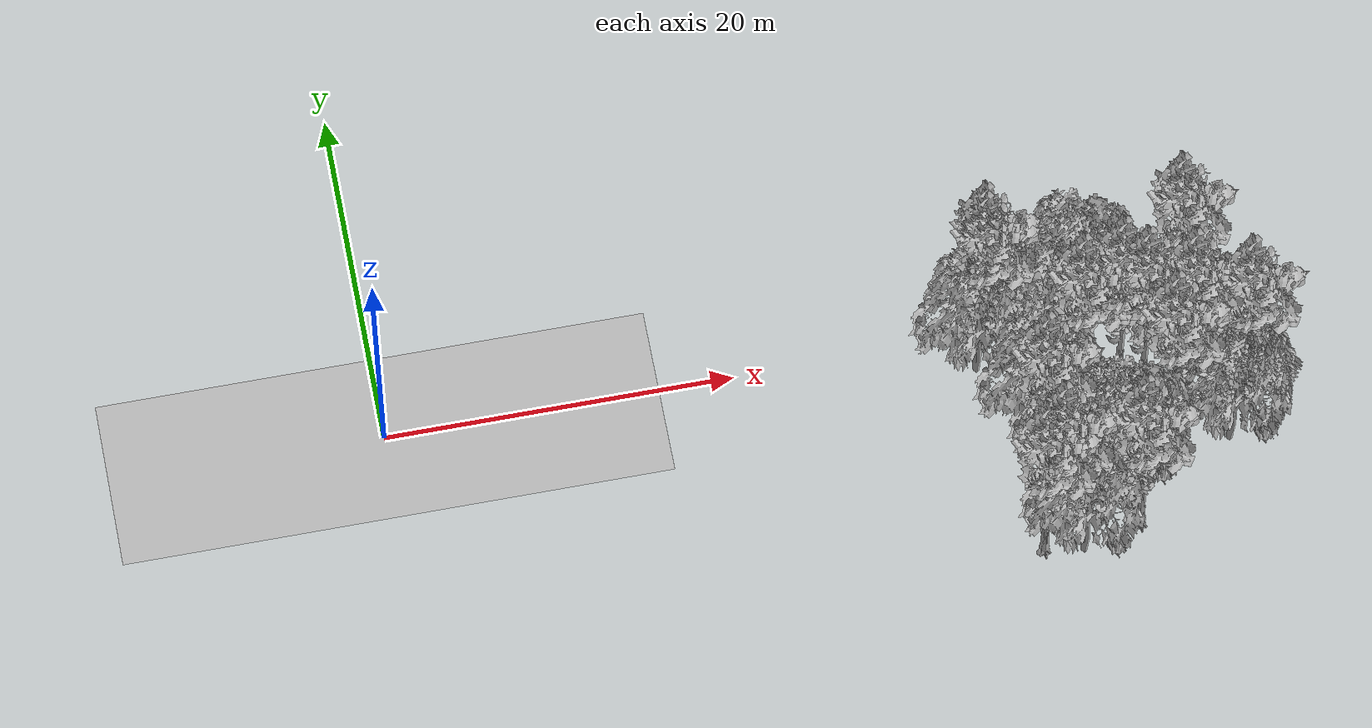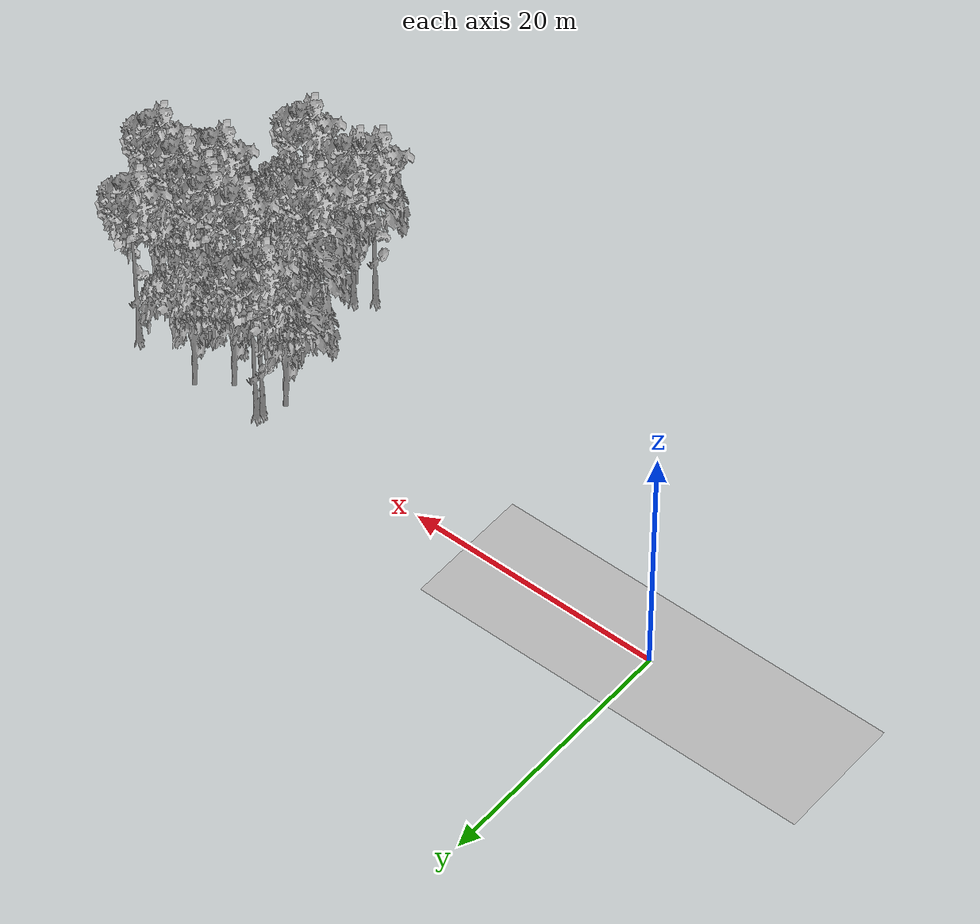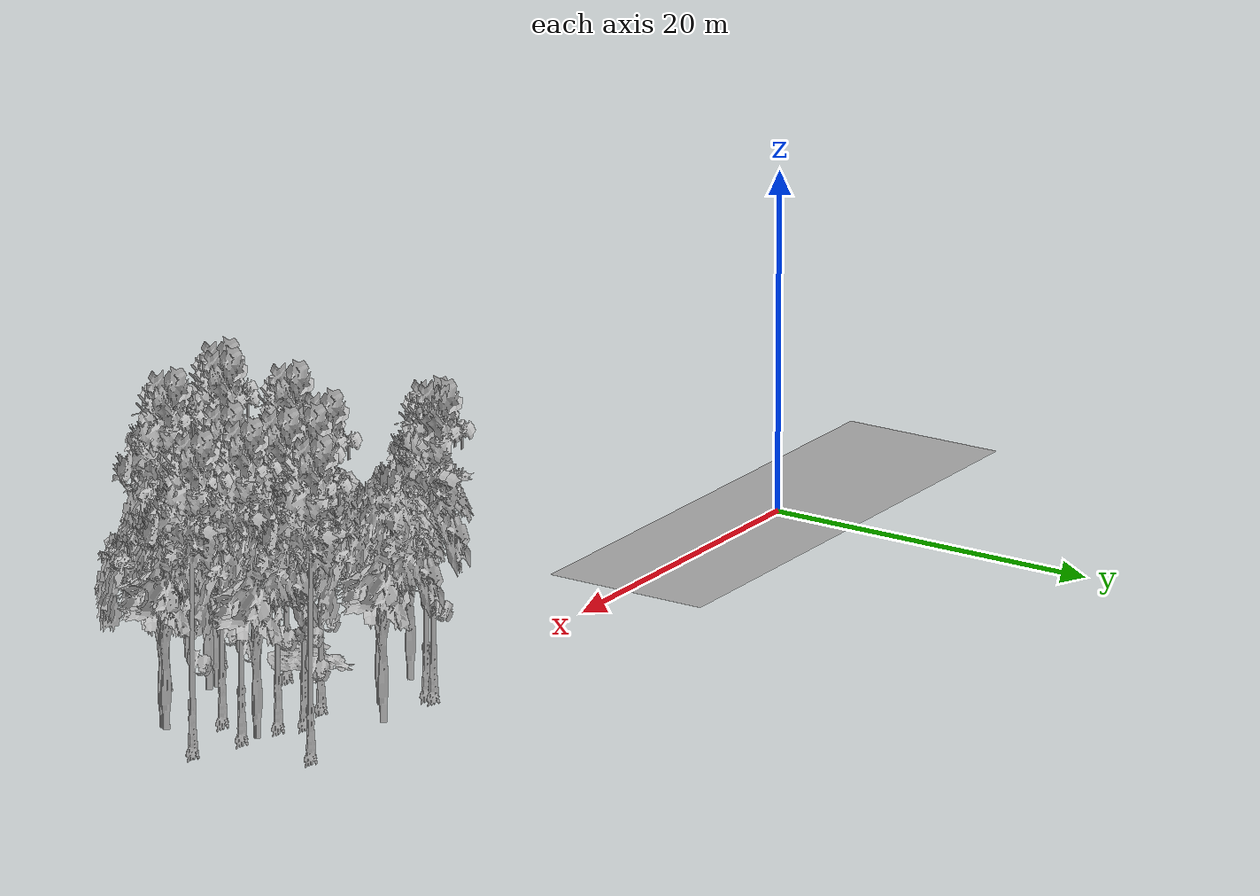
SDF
<sdf version="1.7">
 <world name="default">
  <model name="ground_plane">
   <static>1</static>
   <link name="link">
    <collision name="collision">
     <pose>-50 0 0 0 -0 0</pose>
     <geometry><plane><normal>0 0 1</normal><size>100 100</size></plane></geometry>
     <surface><contact><ode><min_depth>0.01</min_depth><max_vel>0</max_vel></ode></contact></surface>
    </collision>
    <visual name="grass">
     <cast_shadows>0</cast_shadows>
     <geometry>
      <mesh>
       <scale>0.5814285714285714 0.18142857142857144 0.1</scale>
       <uri>file://grass_plane/meshes/grass_plane.dae</uri>
      </mesh>
     </geometry>
    </visual>
   </link>
  </model>
  <model name="Tree 22">
   <static>1</static>
   <pose>45.19491098389037 -3.7679552045465208 0 1.57079 -0 0</pose>
   <link name="link">
    <collision name="collision">
     <geometry><mesh><scale>3.5 5 3.5</scale><uri>model://tree_2/meshes/tree_2.obj</uri></mesh></geometry>
    </collision>
    <visual name="visual">
     <geometry><mesh><scale>3.5 5 3.5</scale><uri>model://tree_2/meshes/tree_2.obj</uri></mesh></geometry>
    </visual>
   </link>
  </model>
  <model name="Tree 25">
   <static>1</static>
   <pose>37.197878723263244 -13.987686216471614 0 1.57079 -0 0</pose>
   <link name="link">
    <collision name="collision">
     <geometry><mesh><scale>3.5 5 3.5</scale><uri>model://tree_2/meshes/tree_2.obj</uri></mesh></geometry>
    </collision>
    <visual name="visual">
     <geometry><mesh><scale>3.5 5 3.5</scale><uri>model://tree_2/meshes/tree_2.obj</uri></mesh></geometry>
    </visual>
   </link>
  </model>
  <model name="Tree 31">
   <static>1</static>
   <pose>45.15222607819281 -4.835462732482069 0 1.57079 -0 0</pose>
   <link name="link">
    <collision name="collision">
     <geometry><mesh><scale>3.5 5 3.5</scale><uri>model://tree_9/meshes/tree_9.obj</uri></mesh></geometry>
    </collision>
    <visual name="visual">
     <geometry><mesh><scale>3.5 5 3.5</scale><uri>model://tree_9/meshes/tree_9.obj</uri></mesh></geometry>
    </visual>
   </link>
  </model>
  <model name="Tree 35">
   <static>1</static>
   <pose>34.31179163959774 -0.48038911055382094 0 1.57079 -0 0</pose>
   <link name="link">
    <collision name="collision">
     <geometry><mesh><scale>3.5 5 3.5</scale><uri>model://tree_9/meshes/tree_9.obj</uri></mesh></geometry>
    </collision>
    <visual name="visual">
     <geometry><mesh><scale>3.5 5 3.5</scale><uri>model://tree_9/meshes/tree_9.obj</uri></mesh></geometry>
    </visual>
   </link>
  </model>
  <model name="Tree 73">
   <static>1</static>
   <pose>40.69767923217623 -12.9473553309623 0 1.57079 -0 0</pose>
   <link name="link">
    <collision name="collision">
     <geometry><mesh><scale>3.5 5 3.5</scale><uri>model://tree_9/meshes/tree_9.obj</uri></mesh></geometry>
    </collision>
    <visual name="visual">
     <geometry><mesh><scale>3.5 5 3.5</scale><uri>model://tree_9/meshes/tree_9.obj</uri></mesh></geometry>
    </visual>
   </link>
  </model>
  <model name="Tree 75">
   <static>1</static>
   <pose>36.17318334431357 -8.248628534006716 0 1.57079 -0 0</pose>
   <link name="link">
    <collision name="collision">
     <geometry><mesh><scale>3.5 5 3.5</scale><uri>model://tree_9/meshes/tree_9.obj</uri></mesh></geometry>
    </collision>
    <visual name="visual">
     <geometry><mesh><scale>3.5 5 3.5</scale><uri>model://tree_9/meshes/tree_9.obj</uri></mesh></geometry>
    </visual>
   </link>
  </model>
  <model name="Tree 83">
   <static>1</static>
   <pose>40.02222237190621 -10.047947298441368 0 1.57079 -0 0</pose>
   <link name="link">
    <collision name="collision">
     <geometry><mesh><scale>3.5 5 3.5</scale><uri>model://tree_2/meshes/tree_2.obj</uri></mesh></geometry>
    </collision>
    <visual name="visual">
     <geometry><mesh><scale>3.5 5 3.5</scale><uri>model://tree_2/meshes/tree_2.obj</uri></mesh></geometry>
    </visual>
   </link>
  </model>
  <model name="Tree 90">
   <static>1</static>
   <pose>43.641379348062614 -7.159195260732787 0 1.57079 -0 0</pose>
   <link name="link">
    <collision name="collision">
     <geometry><mesh><scale>3.5 5 3.5</scale><uri>model://tree_9/meshes/tree_9.obj</uri></mesh></geometry>
    </collision>
    <visual name="visual">
     <geometry><mesh><scale>3.5 5 3.5</scale><uri>model://tree_9/meshes/tree_9.obj</uri></mesh></geometry>
    </visual>
   </link>
  </model>
  <model name="Tree 91">
   <static>1</static>
   <pose>41.47839137294622 -3.387655900063889 0 1.57079 -0 0</pose>
   <link name="link">
    <collision name="collision">
     <geometry><mesh><scale>3.5 5 3.5</scale><uri>model://tree_9/meshes/tree_9.obj</uri></mesh></geometry>
    </collision>
    <visual name="visual">
     <geometry><mesh><scale>3.5 5 3.5</scale><uri>model://tree_9/meshes/tree_9.obj</uri></mesh></geometry>
    </visual>
   </link>
  </model>
  <model name="Tree 99">
   <static>1</static>
   <pose>39.08357673679144 -3.9936871893840493 0 1.57079 -0 0</pose>
   <link name="link">
    <collision name="collision">
     <geometry><mesh><scale>3.5 5 3.5</scale><uri>model://tree_9/meshes/tree_9.obj</uri></mesh></geometry>
    </collision>
    <visual name="visual">
     <geometry><mesh><scale>3.5 5 3.5</scale><uri>model://tree_9/meshes/tree_9.obj</uri></mesh></geometry>
    </visual>
   </link>
  </model>
  <model name="Tree 100">
   <static>1</static>
   <pose>35.08579785081953 -13.52033684104452 0 1.57079 -0 0</pose>
   <link name="link">
    <collision name="collision">
     <geometry><mesh><scale>3.5 5 3.5</scale><uri>model://tree_9/meshes/tree_9.obj</uri></mesh></geometry>
    </collision>
    <visual name="visual">
     <geometry><mesh><scale>3.5 5 3.5</scale><uri>model://tree_9/meshes/tree_9.obj</uri></mesh></geometry>
    </visual>
   </link>
  </model>
  <model name="Tree 106">
   <static>1</static>
   <pose>33.451613891312434 -2.055057637507078 0 1.57079 -0 0</pose>
   <link name="link">
    <collision name="collision">
     <geometry><mesh><scale>3.5 5 3.5</scale><uri>model://tree_2/meshes/tree_2.obj</uri></mesh></geometry>
    </collision>
    <visual name="visual">
     <geometry><mesh><scale>3.5 5 3.5</scale><uri>model://tree_2/meshes/tree_2.obj</uri></mesh></geometry>
    </visual>
   </link>
  </model>
  <model name="Tree 118">
   <static>1</static>
   <pose>37.46123483681585 -1.2521675428188708 0 1.57079 -0 0</pose>
   <link name="link">
    <collision name="collision">
     <geometry><mesh><scale>3.5 5 3.5</scale><uri>model://tree_2/meshes/tree_2.obj</uri></mesh></geometry>
    </collision>
    <visual name="visual">
     <geometry><mesh><scale>3.5 5 3.5</scale><uri>model://tree_2/meshes/tree_2.obj</uri></mesh></geometry>
    </visual>
   </link>
  </model>
  <model name="Tree 135">
   <static>1</static>
   <pose>36.67884747617606 -6.464333328147578 0 1.57079 -0 0</pose>
   <link name="link">
    <collision name="collision">
     <geometry><mesh><scale>4 2.5 4</scale><uri>model://tree_1/meshes/tree_1.obj</uri></mesh></geometry>
    </collision>
    <visual name="visual">
     <geometry><mesh><scale>4 2.5 4</scale><uri>model://tree_1/meshes/tree_1.obj</uri></mesh></geometry>
    </visual>
   </link>
  </model>
  <model name="Tree 177">
   <static>1</static>
   <pose>48.18389138573015 -5.826535625569825 0 1.57079 -0 0</pose>
   <link name="link">
    <collision name="collision">
     <geometry><mesh><scale>3.5 5 3.5</scale><uri>model://tree_9/meshes/tree_9.obj</uri></mesh></geometry>
    </collision>
    <visual name="visual">
     <geometry><mesh><scale>3.5 5 3.5</scale><uri>model://tree_9/meshes/tree_9.obj</uri></mesh></geometry>
    </visual>
   </link>
  </model>
  <model name="Tree 181">
   <static>1</static>
   <pose>46.70788249421392 -8.545951634698298 0 1.57079 -0 0</pose>
   <link name="link">
    <collision name="collision">
     <geometry><mesh><scale>3.5 5 3.5</scale><uri>model://tree_2/meshes/tree_2.obj</uri></mesh></geometry>
    </collision>
    <visual name="visual">
     <geometry><mesh><scale>3.5 5 3.5</scale><uri>model://tree_2/meshes/tree_2.obj</uri></mesh></geometry>
    </visual>
   </link>
  </model>
  <model name="Tree 196">
   <static>1</static>
   <pose>39.62584635208579 0.43012933134716747 0 1.57079 -0 0</pose>
   <link name="link">
    <collision name="collision">
     <geometry><mesh><scale>3.5 5 3.5</scale><uri>model://tree_2/meshes/tree_2.obj</uri></mesh></geometry>
    </collision>
    <visual name="visual">
     <geometry><mesh><scale>3.5 5 3.5</scale><uri>model://tree_2/meshes/tree_2.obj</uri></mesh></geometry>
    </visual>
   </link>
  </model>
  <model name="Tree 221">
   <static>1</static>
   <pose>36.25146253325704 -12.51367244583134 0 1.57079 -0 0</pose>
   <link name="link">
    <collision name="collision">
     <geometry><mesh><scale>3.5 5 3.5</scale><uri>model://tree_9/meshes/tree_9.obj</uri></mesh></geometry>
    </collision>
    <visual name="visual">
     <geometry><mesh><scale>3.5 5 3.5</scale><uri>model://tree_9/meshes/tree_9.obj</uri></mesh></geometry>
    </visual>
   </link>
  </model>
  <model name="Tree 225">
   <static>1</static>
   <pose>42.66875106589653 -4.245764533788613 0 1.57079 -0 0</pose>
   <link name="link">
    <collision name="collision">
     <geometry><mesh><scale>3.5 5 3.5</scale><uri>model://tree_9/meshes/tree_9.obj</uri></mesh></geometry>
    </collision>
    <visual name="visual">
     <geometry><mesh><scale>3.5 5 3.5</scale><uri>model://tree_9/meshes/tree_9.obj</uri></mesh></geometry>
    </visual>
   </link>
  </model>
  <model name="Tree 229">
   <static>1</static>
   <pose>46.6224923975237 -8.802010330147986 0 1.57079 -0 0</pose>
   <link name="link">
    <collision name="collision">
     <geometry><mesh><scale>3.5 5 3.5</scale><uri>model://tree_2/meshes/tree_2.obj</uri></mesh></geometry>
    </collision>
    <visual name="visual">
     <geometry><mesh><scale>3.5 5 3.5</scale><uri>model://tree_2/meshes/tree_2.obj</uri></mesh></geometry>
    </visual>
   </link>
  </model>
  <model name="Tree 237">
   <static>1</static>
   <pose>40.58871698533993 -10.16658656886301 0 1.57079 -0 0</pose>
   <link name="link">
    <collision name="collision">
     <geometry><mesh><scale>3.5 5 3.5</scale><uri>model://tree_2/meshes/tree_2.obj</uri></mesh></geometry>
    </collision>
    <visual name="visual">
     <geometry><mesh><scale>3.5 5 3.5</scale><uri>model://tree_2/meshes/tree_2.obj</uri></mesh></geometry>
    </visual>
   </link>
  </model>
  <model name="Tree 255">
   <static>1</static>
   <pose>37.53903579334869 -9.205410479113764 0 1.57079 -0 0</pose>
   <link name="link">
    <collision name="collision">
     <geometry><mesh><scale>3.5 5 3.5</scale><uri>model://tree_2/meshes/tree_2.obj</uri></mesh></geometry>
    </collision>
    <visual name="visual">
     <geometry><mesh><scale>3.5 5 3.5</scale><uri>model://tree_2/meshes/tree_2.obj</uri></mesh></geometry>
    </visual>
   </link>
  </model>
  <model name="Tree 267">
   <static>1</static>
   <pose>34.4309560240751 0.044888339114423914 0 1.57079 -0 0</pose>
   <link name="link">
    <collision name="collision">
     <geometry><mesh><scale>3.5 5 3.5</scale><uri>model://tree_9/meshes/tree_9.obj</uri></mesh></geometry>
    </collision>
    <visual name="visual">
     <geometry><mesh><scale>3.5 5 3.5</scale><uri>model://tree_9/meshes/tree_9.obj</uri></mesh></geometry>
    </visual>
   </link>
  </model>
  <model name="Tree 279">
   <static>1</static>
   <pose>36.163336944315276 -6.542526889375296 0 1.57079 -0 0</pose>
   <link name="link">
    <collision name="collision">
     <geometry><mesh><scale>3.5 5 3.5</scale><uri>model://tree_2/meshes/tree_2.obj</uri></mesh></geometry>
    </collision>
    <visual name="visual">
     <geometry><mesh><scale>3.5 5 3.5</scale><uri>model://tree_2/meshes/tree_2.obj</uri></mesh></geometry>
    </visual>
   </link>
  </model>
  <model name="Tree 292">
   <static>1</static>
   <pose>45.44033604571487 -0.2125813952306448 0 1.57079 -0 0</pose>
   <link name="link">
    <collision name="collision">
     <geometry><mesh><scale>3.5 5 3.5</scale><uri>model://tree_9/meshes/tree_9.obj</uri></mesh></geometry>
    </collision>
    <visual name="visual">
     <geometry><mesh><scale>3.5 5 3.5</scale><uri>model://tree_9/meshes/tree_9.obj</uri></mesh></geometry>
    </visual>
   </link>
  </model>
 </world>
</sdf>
